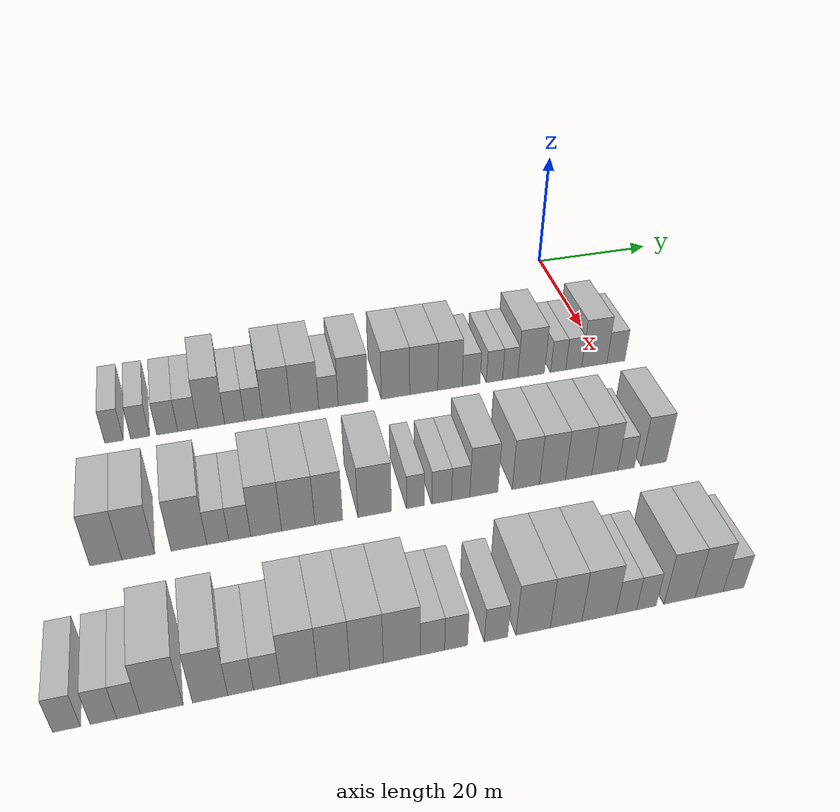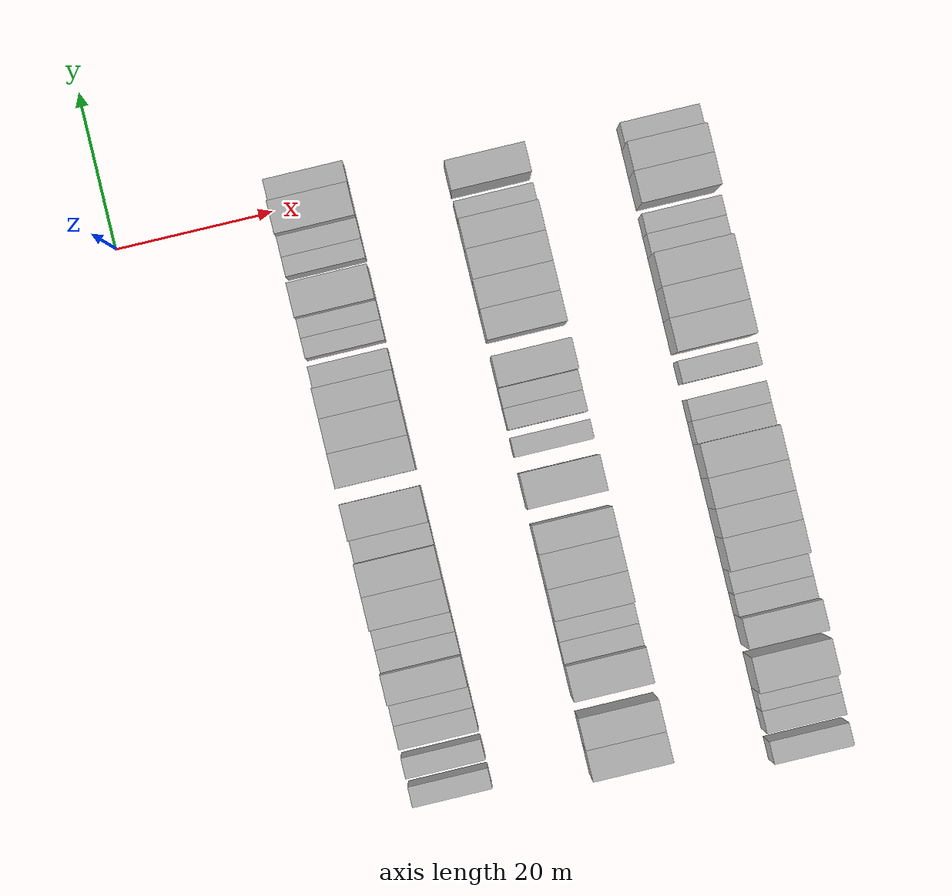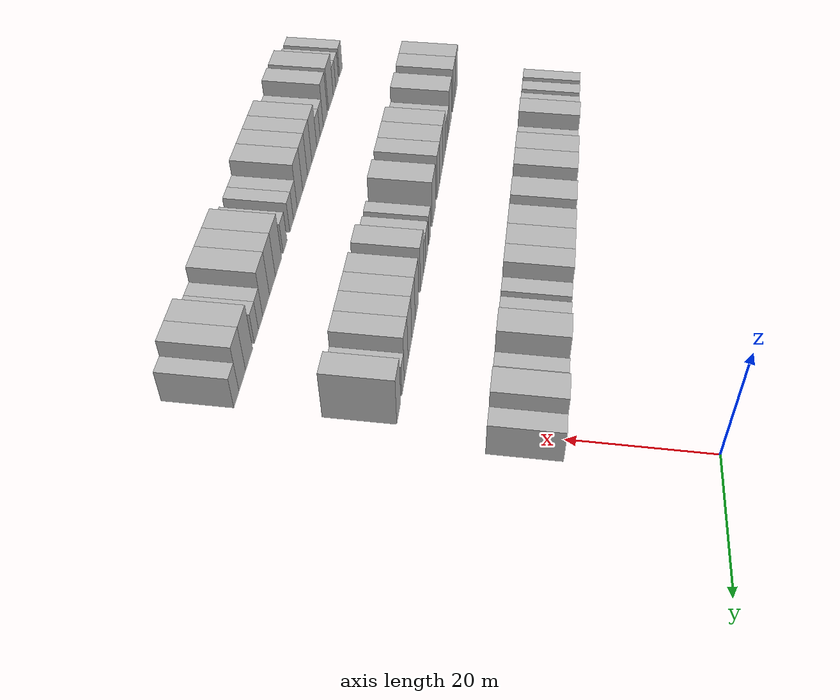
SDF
<sdf version="1.6">
 <world name="default">
  <model name="building_40">
   <static>1</static>
   <pose>25.0000 -73.9333 0 0.000000 0.000000 0.000000</pose>
   <link name="link">
    <pose>0 0 3.00 0 0 0</pose>
    <collision name="collision"><geometry><box><size>10.0000 2.5794 6.0000</size></box></geometry></collision>
    <visual name="visual">
     <cast_shadows>0</cast_shadows>
     <geometry><box><size>10.0000 2.5794 6.0000</size></box></geometry>
     <material>
      <script>
       <uri>model://HANNAS_wall/materials/scripts</uri>
       <uri>model://HANNAS_wall/materials/textures</uri>
       <name>vrc/HANNAS_wall</name>
      </script>
     </material>
    </visual>
   </link>
  </model>
  <model name="building_41">
   <static>1</static>
   <pose>25.0000 -70.3385 0 0.000000 0.000000 0.000000</pose>
   <link name="link">
    <pose>0 0 3.00 0 0 0</pose>
    <collision name="collision"><geometry><box><size>10.0000 2.6103 6.0000</size></box></geometry></collision>
    <visual name="visual">
     <cast_shadows>0</cast_shadows>
     <geometry><box><size>10.0000 2.6103 6.0000</size></box></geometry>
     <material>
      <script>
       <uri>model://HANNAS_wall/materials/scripts</uri>
       <uri>model://HANNAS_wall/materials/textures</uri>
       <name>vrc/HANNAS_wall</name>
      </script>
     </material>
    </visual>
   </link>
  </model>
  <model name="building_42">
   <static>1</static>
   <pose>25.0000 -66.5599 0 0.000000 0.000000 0.000000</pose>
   <link name="link">
    <pose>0 0 3.00 0 0 0</pose>
    <collision name="collision"><geometry><box><size>10.0000 2.9468 6.0000</size></box></geometry></collision>
    <visual name="visual">
     <cast_shadows>0</cast_shadows>
     <geometry><box><size>10.0000 2.9468 6.0000</size></box></geometry>
     <material>
      <script>
       <uri>model://HANNAS_wall/materials/scripts</uri>
       <uri>model://HANNAS_wall/materials/textures</uri>
       <name>vrc/HANNAS_wall</name>
      </script>
     </material>
    </visual>
   </link>
  </model>
  <model name="building_43">
   <static>1</static>
   <pose>25.0000 -63.6594 0 0.000000 0.000000 0.000000</pose>
   <link name="link">
    <pose>0 0 3.00 0 0 0</pose>
    <collision name="collision"><geometry><box><size>10.0000 2.8542 6.0000</size></box></geometry></collision>
    <visual name="visual">
     <cast_shadows>0</cast_shadows>
     <geometry><box><size>10.0000 2.8542 6.0000</size></box></geometry>
     <material>
      <script>
       <uri>model://HANNAS_wall/materials/scripts</uri>
       <uri>model://HANNAS_wall/materials/textures</uri>
       <name>vrc/HANNAS_wall</name>
      </script>
     </material>
    </visual>
   </link>
  </model>
  <model name="building_44">
   <static>1</static>
   <pose>25.0000 -60.3296 0 0.000000 0.000000 0.000000</pose>
   <link name="link">
    <pose>0 0 4.50 0 0 0</pose>
    <collision name="collision"><geometry><box><size>10.0000 3.8053 9.0000</size></box></geometry></collision>
    <visual name="visual">
     <cast_shadows>0</cast_shadows>
     <geometry><box><size>10.0000 3.8053 9.0000</size></box></geometry>
     <material>
      <script>
       <uri>model://HANNAS_wall/materials/scripts</uri>
       <uri>model://HANNAS_wall/materials/textures</uri>
       <name>vrc/HANNAS_wall</name>
      </script>
     </material>
    </visual>
   </link>
  </model>
  <model name="building_45">
   <static>1</static>
   <pose>25.0000 -57.0089 0 0.000000 0.000000 0.000000</pose>
   <link name="link">
    <pose>0 0 3.00 0 0 0</pose>
    <collision name="collision"><geometry><box><size>10.0000 2.8361 6.0000</size></box></geometry></collision>
    <visual name="visual">
     <cast_shadows>0</cast_shadows>
     <geometry><box><size>10.0000 2.8361 6.0000</size></box></geometry>
     <material>
      <script>
       <uri>model://HANNAS_wall/materials/scripts</uri>
       <uri>model://HANNAS_wall/materials/textures</uri>
       <name>vrc/HANNAS_wall</name>
      </script>
     </material>
    </visual>
   </link>
  </model>
  <model name="building_46">
   <static>1</static>
   <pose>25.0000 -54.2836 0 0.000000 0.000000 0.000000</pose>
   <link name="link">
    <pose>0 0 3.00 0 0 0</pose>
    <collision name="collision"><geometry><box><size>10.0000 2.6145 6.0000</size></box></geometry></collision>
    <visual name="visual">
     <cast_shadows>0</cast_shadows>
     <geometry><box><size>10.0000 2.6145 6.0000</size></box></geometry>
     <material>
      <script>
       <uri>model://HANNAS_wall/materials/scripts</uri>
       <uri>model://HANNAS_wall/materials/textures</uri>
       <name>vrc/HANNAS_wall</name>
      </script>
     </material>
    </visual>
   </link>
  </model>
  <model name="building_47">
   <static>1</static>
   <pose>25.0000 -50.9097 0 0.000000 0.000000 0.000000</pose>
   <link name="link">
    <pose>0 0 4.50 0 0 0</pose>
    <collision name="collision"><geometry><box><size>10.0000 4.1334 9.0000</size></box></geometry></collision>
    <visual name="visual">
     <cast_shadows>0</cast_shadows>
     <geometry><box><size>10.0000 4.1334 9.0000</size></box></geometry>
     <material>
      <script>
       <uri>model://HANNAS_wall/materials/scripts</uri>
       <uri>model://HANNAS_wall/materials/textures</uri>
       <name>vrc/HANNAS_wall</name>
      </script>
     </material>
    </visual>
   </link>
  </model>
  <model name="building_48">
   <static>1</static>
   <pose>25.0000 -46.7905 0 0.000000 0.000000 0.000000</pose>
   <link name="link">
    <pose>0 0 4.50 0 0 0</pose>
    <collision name="collision"><geometry><box><size>10.0000 4.1050 9.0000</size></box></geometry></collision>
    <visual name="visual">
     <cast_shadows>0</cast_shadows>
     <geometry><box><size>10.0000 4.1050 9.0000</size></box></geometry>
     <material>
      <script>
       <uri>model://HANNAS_wall/materials/scripts</uri>
       <uri>model://HANNAS_wall/materials/textures</uri>
       <name>vrc/HANNAS_wall</name>
      </script>
     </material>
    </visual>
   </link>
  </model>
  <model name="building_49">
   <static>1</static>
   <pose>25.0000 -43.2898 0 0.000000 0.000000 0.000000</pose>
   <link name="link">
    <pose>0 0 3.00 0 0 0</pose>
    <collision name="collision"><geometry><box><size>10.0000 2.8965 6.0000</size></box></geometry></collision>
    <visual name="visual">
     <cast_shadows>0</cast_shadows>
     <geometry><box><size>10.0000 2.8965 6.0000</size></box></geometry>
     <material>
      <script>
       <uri>model://HANNAS_wall/materials/scripts</uri>
       <uri>model://HANNAS_wall/materials/textures</uri>
       <name>vrc/HANNAS_wall</name>
      </script>
     </material>
    </visual>
   </link>
  </model>
  <model name="building_50">
   <static>1</static>
   <pose>25.0000 -39.6009 0 0.000000 0.000000 0.000000</pose>
   <link name="link">
    <pose>0 0 4.50 0 0 0</pose>
    <collision name="collision"><geometry><box><size>10.0000 4.4813 9.0000</size></box></geometry></collision>
    <visual name="visual">
     <cast_shadows>0</cast_shadows>
     <geometry><box><size>10.0000 4.4813 9.0000</size></box></geometry>
     <material>
      <script>
       <uri>model://HANNAS_wall/materials/scripts</uri>
       <uri>model://HANNAS_wall/materials/textures</uri>
       <name>vrc/HANNAS_wall</name>
      </script>
     </material>
    </visual>
   </link>
  </model>
  <model name="building_51">
   <static>1</static>
   <pose>25.0000 -33.2024 0 0.000000 0.000000 0.000000</pose>
   <link name="link">
    <pose>0 0 4.50 0 0 0</pose>
    <collision name="collision"><geometry><box><size>10.0000 4.3157 9.0000</size></box></geometry></collision>
    <visual name="visual">
     <cast_shadows>0</cast_shadows>
     <geometry><box><size>10.0000 4.3157 9.0000</size></box></geometry>
     <material>
      <script>
       <uri>model://HANNAS_wall/materials/scripts</uri>
       <uri>model://HANNAS_wall/materials/textures</uri>
       <name>vrc/HANNAS_wall</name>
      </script>
     </material>
    </visual>
   </link>
  </model>
  <model name="building_52">
   <static>1</static>
   <pose>25.0000 -28.8825 0 0.000000 0.000000 0.000000</pose>
   <link name="link">
    <pose>0 0 4.50 0 0 0</pose>
    <collision name="collision"><geometry><box><size>10.0000 4.3240 9.0000</size></box></geometry></collision>
    <visual name="visual">
     <cast_shadows>0</cast_shadows>
     <geometry><box><size>10.0000 4.3240 9.0000</size></box></geometry>
     <material>
      <script>
       <uri>model://HANNAS_wall/materials/scripts</uri>
       <uri>model://HANNAS_wall/materials/textures</uri>
       <name>vrc/HANNAS_wall</name>
      </script>
     </material>
    </visual>
   </link>
  </model>
  <model name="building_53">
   <static>1</static>
   <pose>25.0000 -24.8247 0 0.000000 0.000000 0.000000</pose>
   <link name="link">
    <pose>0 0 4.50 0 0 0</pose>
    <collision name="collision"><geometry><box><size>10.0000 3.7916 9.0000</size></box></geometry></collision>
    <visual name="visual">
     <cast_shadows>0</cast_shadows>
     <geometry><box><size>10.0000 3.7916 9.0000</size></box></geometry>
     <material>
      <script>
       <uri>model://HANNAS_wall/materials/scripts</uri>
       <uri>model://HANNAS_wall/materials/textures</uri>
       <name>vrc/HANNAS_wall</name>
      </script>
     </material>
    </visual>
   </link>
  </model>
  <model name="building_54">
   <static>1</static>
   <pose>25.0000 -21.5169 0 0.000000 0.000000 0.000000</pose>
   <link name="link">
    <pose>0 0 3.00 0 0 0</pose>
    <collision name="collision"><geometry><box><size>10.0000 2.8240 6.0000</size></box></geometry></collision>
    <visual name="visual">
     <cast_shadows>0</cast_shadows>
     <geometry><box><size>10.0000 2.8240 6.0000</size></box></geometry>
     <material>
      <script>
       <uri>model://HANNAS_wall/materials/scripts</uri>
       <uri>model://HANNAS_wall/materials/textures</uri>
       <name>vrc/HANNAS_wall</name>
      </script>
     </material>
    </visual>
   </link>
  </model>
  <model name="building_55">
   <static>1</static>
   <pose>25.0000 -17.8213 0 0.000000 0.000000 0.000000</pose>
   <link name="link">
    <pose>0 0 3.00 0 0 0</pose>
    <collision name="collision"><geometry><box><size>10.0000 2.5672 6.0000</size></box></geometry></collision>
    <visual name="visual">
     <cast_shadows>0</cast_shadows>
     <geometry><box><size>10.0000 2.5672 6.0000</size></box></geometry>
     <material>
      <script>
       <uri>model://HANNAS_wall/materials/scripts</uri>
       <uri>model://HANNAS_wall/materials/textures</uri>
       <name>vrc/HANNAS_wall</name>
      </script>
     </material>
    </visual>
   </link>
  </model>
  <model name="building_56">
   <static>1</static>
   <pose>25.0000 -15.3279 0 0.000000 0.000000 0.000000</pose>
   <link name="link">
    <pose>0 0 3.00 0 0 0</pose>
    <collision name="collision"><geometry><box><size>10.0000 2.4195 6.0000</size></box></geometry></collision>
    <visual name="visual">
     <cast_shadows>0</cast_shadows>
     <geometry><box><size>10.0000 2.4195 6.0000</size></box></geometry>
     <material>
      <script>
       <uri>model://HANNAS_wall/materials/scripts</uri>
       <uri>model://HANNAS_wall/materials/textures</uri>
       <name>vrc/HANNAS_wall</name>
      </script>
     </material>
    </visual>
   </link>
  </model>
  <model name="building_57">
   <static>1</static>
   <pose>25.0000 -11.9691 0 0.000000 0.000000 0.000000</pose>
   <link name="link">
    <pose>0 0 4.50 0 0 0</pose>
    <collision name="collision"><geometry><box><size>10.0000 4.2981 9.0000</size></box></geometry></collision>
    <visual name="visual">
     <cast_shadows>0</cast_shadows>
     <geometry><box><size>10.0000 4.2981 9.0000</size></box></geometry>
     <material>
      <script>
       <uri>model://HANNAS_wall/materials/scripts</uri>
       <uri>model://HANNAS_wall/materials/textures</uri>
       <name>vrc/HANNAS_wall</name>
      </script>
     </material>
    </visual>
   </link>
  </model>
  <model name="building_58">
   <static>1</static>
   <pose>25.0000 -7.5901 0 0.000000 0.000000 0.000000</pose>
   <link name="link">
    <pose>0 0 3.00 0 0 0</pose>
    <collision name="collision"><geometry><box><size>10.0000 2.4600 6.0000</size></box></geometry></collision>
    <visual name="visual">
     <cast_shadows>0</cast_shadows>
     <geometry><box><size>10.0000 2.4600 6.0000</size></box></geometry>
     <material>
      <script>
       <uri>model://HANNAS_wall/materials/scripts</uri>
       <uri>model://HANNAS_wall/materials/textures</uri>
       <name>vrc/HANNAS_wall</name>
      </script>
     </material>
    </visual>
   </link>
  </model>
  <model name="building_59">
   <static>1</static>
   <pose>25.0000 -5.0521 0 0.000000 0.000000 0.000000</pose>
   <link name="link">
    <pose>0 0 3.00 0 0 0</pose>
    <collision name="collision"><geometry><box><size>10.0000 2.6160 6.0000</size></box></geometry></collision>
    <visual name="visual">
     <cast_shadows>0</cast_shadows>
     <geometry><box><size>10.0000 2.6160 6.0000</size></box></geometry>
     <material>
      <script>
       <uri>model://HANNAS_wall/materials/scripts</uri>
       <uri>model://HANNAS_wall/materials/textures</uri>
       <name>vrc/HANNAS_wall</name>
      </script>
     </material>
    </visual>
   </link>
  </model>
  <model name="building_60">
   <static>1</static>
   <pose>25.0000 -1.6668 0 0.000000 0.000000 0.000000</pose>
   <link name="link">
    <pose>0 0 4.50 0 0 0</pose>
    <collision name="collision"><geometry><box><size>10.0000 4.1545 9.0000</size></box></geometry></collision>
    <visual name="visual">
     <cast_shadows>0</cast_shadows>
     <geometry><box><size>10.0000 4.1545 9.0000</size></box></geometry>
     <material>
      <script>
       <uri>model://HANNAS_wall/materials/scripts</uri>
       <uri>model://HANNAS_wall/materials/textures</uri>
       <name>vrc/HANNAS_wall</name>
      </script>
     </material>
    </visual>
   </link>
  </model>
  <model name="building_61">
   <static>1</static>
   <pose>25.0000 1.9096 0 0.000000 0.000000 0.000000</pose>
   <link name="link">
    <pose>0 0 3.00 0 0 0</pose>
    <collision name="collision"><geometry><box><size>10.0000 2.9982 6.0000</size></box></geometry></collision>
    <visual name="visual">
     <cast_shadows>0</cast_shadows>
     <geometry><box><size>10.0000 2.9982 6.0000</size></box></geometry>
     <material>
      <script>
       <uri>model://HANNAS_wall/materials/scripts</uri>
       <uri>model://HANNAS_wall/materials/textures</uri>
       <name>vrc/HANNAS_wall</name>
      </script>
     </material>
    </visual>
   </link>
  </model>
  <model name="building_172">
   <static>1</static>
   <pose>47.0000 -74.9701 0 0.000000 0.000000 0.000000</pose>
   <link name="link">
    <pose>0 0 4.50 0 0 0</pose>
    <collision name="collision"><geometry><box><size>10.0000 3.8604 9.0000</size></box></geometry></collision>
    <visual name="visual">
     <cast_shadows>0</cast_shadows>
     <geometry><box><size>10.0000 3.8604 9.0000</size></box></geometry>
     <material>
      <script>
       <uri>model://HANNAS_wall/materials/scripts</uri>
       <uri>model://HANNAS_wall/materials/textures</uri>
       <name>vrc/HANNAS_wall</name>
      </script>
     </material>
    </visual>
   </link>
  </model>
  <model name="building_173">
   <static>1</static>
   <pose>47.0000 -71.0422 0 0.000000 0.000000 0.000000</pose>
   <link name="link">
    <pose>0 0 4.50 0 0 0</pose>
    <collision name="collision"><geometry><box><size>10.0000 3.9955 9.0000</size></box></geometry></collision>
    <visual name="visual">
     <cast_shadows>0</cast_shadows>
     <geometry><box><size>10.0000 3.9955 9.0000</size></box></geometry>
     <material>
      <script>
       <uri>model://HANNAS_wall/materials/scripts</uri>
       <uri>model://HANNAS_wall/materials/textures</uri>
       <name>vrc/HANNAS_wall</name>
      </script>
     </material>
    </visual>
   </link>
  </model>
  <model name="building_174">
   <static>1</static>
   <pose>47.0000 -64.8276 0 0.000000 0.000000 0.000000</pose>
   <link name="link">
    <pose>0 0 4.50 0 0 0</pose>
    <collision name="collision"><geometry><box><size>10.0000 4.4336 9.0000</size></box></geometry></collision>
    <visual name="visual">
     <cast_shadows>0</cast_shadows>
     <geometry><box><size>10.0000 4.4336 9.0000</size></box></geometry>
     <material>
      <script>
       <uri>model://HANNAS_wall/materials/scripts</uri>
       <uri>model://HANNAS_wall/materials/textures</uri>
       <name>vrc/HANNAS_wall</name>
      </script>
     </material>
    </visual>
   </link>
  </model>
  <model name="building_175">
   <static>1</static>
   <pose>47.0000 -61.2288 0 0.000000 0.000000 0.000000</pose>
   <link name="link">
    <pose>0 0 3.00 0 0 0</pose>
    <collision name="collision"><geometry><box><size>10.0000 2.7641 6.0000</size></box></geometry></collision>
    <visual name="visual">
     <cast_shadows>0</cast_shadows>
     <geometry><box><size>10.0000 2.7641 6.0000</size></box></geometry>
     <material>
      <script>
       <uri>model://HANNAS_wall/materials/scripts</uri>
       <uri>model://HANNAS_wall/materials/textures</uri>
       <name>vrc/HANNAS_wall</name>
      </script>
     </material>
    </visual>
   </link>
  </model>
  <model name="building_176">
   <static>1</static>
   <pose>47.0000 -58.4644 0 0.000000 0.000000 0.000000</pose>
   <link name="link">
    <pose>0 0 3.00 0 0 0</pose>
    <collision name="collision"><geometry><box><size>10.0000 2.7646 6.0000</size></box></geometry></collision>
    <visual name="visual">
     <cast_shadows>0</cast_shadows>
     <geometry><box><size>10.0000 2.7646 6.0000</size></box></geometry>
     <material>
      <script>
       <uri>model://HANNAS_wall/materials/scripts</uri>
       <uri>model://HANNAS_wall/materials/textures</uri>
       <name>vrc/HANNAS_wall</name>
      </script>
     </material>
    </visual>
   </link>
  </model>
  <model name="building_177">
   <static>1</static>
   <pose>47.0000 -55.1084 0 0.000000 0.000000 0.000000</pose>
   <link name="link">
    <pose>0 0 4.50 0 0 0</pose>
    <collision name="collision"><geometry><box><size>10.0000 3.9475 9.0000</size></box></geometry></collision>
    <visual name="visual">
     <cast_shadows>0</cast_shadows>
     <geometry><box><size>10.0000 3.9475 9.0000</size></box></geometry>
     <material>
      <script>
       <uri>model://HANNAS_wall/materials/scripts</uri>
       <uri>model://HANNAS_wall/materials/textures</uri>
       <name>vrc/HANNAS_wall</name>
      </script>
     </material>
    </visual>
   </link>
  </model>
  <model name="building_178">
   <static>1</static>
   <pose>47.0000 -50.9858 0 0.000000 0.000000 0.000000</pose>
   <link name="link">
    <pose>0 0 4.50 0 0 0</pose>
    <collision name="collision"><geometry><box><size>10.0000 4.2977 9.0000</size></box></geometry></collision>
    <visual name="visual">
     <cast_shadows>0</cast_shadows>
     <geometry><box><size>10.0000 4.2977 9.0000</size></box></geometry>
     <material>
      <script>
       <uri>model://HANNAS_wall/materials/scripts</uri>
       <uri>model://HANNAS_wall/materials/textures</uri>
       <name>vrc/HANNAS_wall</name>
      </script>
     </material>
    </visual>
   </link>
  </model>
  <model name="building_179">
   <static>1</static>
   <pose>47.0000 -47.0132 0 0.000000 0.000000 0.000000</pose>
   <link name="link">
    <pose>0 0 4.50 0 0 0</pose>
    <collision name="collision"><geometry><box><size>10.0000 3.6473 9.0000</size></box></geometry></collision>
    <visual name="visual">
     <cast_shadows>0</cast_shadows>
     <geometry><box><size>10.0000 3.6473 9.0000</size></box></geometry>
     <material>
      <script>
       <uri>model://HANNAS_wall/materials/scripts</uri>
       <uri>model://HANNAS_wall/materials/textures</uri>
       <name>vrc/HANNAS_wall</name>
      </script>
     </material>
    </visual>
   </link>
  </model>
  <model name="building_180">
   <static>1</static>
   <pose>47.0000 -40.9636 0 0.000000 0.000000 0.000000</pose>
   <link name="link">
    <pose>0 0 4.50 0 0 0</pose>
    <collision name="collision"><geometry><box><size>10.0000 4.4519 9.0000</size></box></geometry></collision>
    <visual name="visual">
     <cast_shadows>0</cast_shadows>
     <geometry><box><size>10.0000 4.4519 9.0000</size></box></geometry>
     <material>
      <script>
       <uri>model://HANNAS_wall/materials/scripts</uri>
       <uri>model://HANNAS_wall/materials/textures</uri>
       <name>vrc/HANNAS_wall</name>
      </script>
     </material>
    </visual>
   </link>
  </model>
  <model name="building_181">
   <static>1</static>
   <pose>47.0000 -35.5233 0 0.000000 0.000000 0.000000</pose>
   <link name="link">
    <pose>0 0 3.00 0 0 0</pose>
    <collision name="collision"><geometry><box><size>10.0000 2.4288 6.0000</size></box></geometry></collision>
    <visual name="visual">
     <cast_shadows>0</cast_shadows>
     <geometry><box><size>10.0000 2.4288 6.0000</size></box></geometry>
     <material>
      <script>
       <uri>model://HANNAS_wall/materials/scripts</uri>
       <uri>model://HANNAS_wall/materials/textures</uri>
       <name>vrc/HANNAS_wall</name>
      </script>
     </material>
    </visual>
   </link>
  </model>
  <model name="building_182">
   <static>1</static>
   <pose>47.0000 -31.9586 0 0.000000 0.000000 0.000000</pose>
   <link name="link">
    <pose>0 0 3.00 0 0 0</pose>
    <collision name="collision"><geometry><box><size>10.0000 2.7006 6.0000</size></box></geometry></collision>
    <visual name="visual">
     <cast_shadows>0</cast_shadows>
     <geometry><box><size>10.0000 2.7006 6.0000</size></box></geometry>
     <material>
      <script>
       <uri>model://HANNAS_wall/materials/scripts</uri>
       <uri>model://HANNAS_wall/materials/textures</uri>
       <name>vrc/HANNAS_wall</name>
      </script>
     </material>
    </visual>
   </link>
  </model>
  <model name="building_183">
   <static>1</static>
   <pose>47.0000 -29.3502 0 0.000000 0.000000 0.000000</pose>
   <link name="link">
    <pose>0 0 3.00 0 0 0</pose>
    <collision name="collision"><geometry><box><size>10.0000 2.5163 6.0000</size></box></geometry></collision>
    <visual name="visual">
     <cast_shadows>0</cast_shadows>
     <geometry><box><size>10.0000 2.5163 6.0000</size></box></geometry>
     <material>
      <script>
       <uri>model://HANNAS_wall/materials/scripts</uri>
       <uri>model://HANNAS_wall/materials/textures</uri>
       <name>vrc/HANNAS_wall</name>
      </script>
     </material>
    </visual>
   </link>
  </model>
  <model name="building_184">
   <static>1</static>
   <pose>47.0000 -26.1444 0 0.000000 0.000000 0.000000</pose>
   <link name="link">
    <pose>0 0 4.50 0 0 0</pose>
    <collision name="collision"><geometry><box><size>10.0000 3.8954 9.0000</size></box></geometry></collision>
    <visual name="visual">
     <cast_shadows>0</cast_shadows>
     <geometry><box><size>10.0000 3.8954 9.0000</size></box></geometry>
     <material>
      <script>
       <uri>model://HANNAS_wall/materials/scripts</uri>
       <uri>model://HANNAS_wall/materials/textures</uri>
       <name>vrc/HANNAS_wall</name>
      </script>
     </material>
    </visual>
   </link>
  </model>
  <model name="building_185">
   <static>1</static>
   <pose>47.0000 -20.2733 0 0.000000 0.000000 0.000000</pose>
   <link name="link">
    <pose>0 0 4.50 0 0 0</pose>
    <collision name="collision"><geometry><box><size>10.0000 3.8469 9.0000</size></box></geometry></collision>
    <visual name="visual">
     <cast_shadows>0</cast_shadows>
     <geometry><box><size>10.0000 3.8469 9.0000</size></box></geometry>
     <material>
      <script>
       <uri>model://HANNAS_wall/materials/scripts</uri>
       <uri>model://HANNAS_wall/materials/textures</uri>
       <name>vrc/HANNAS_wall</name>
      </script>
     </material>
    </visual>
   </link>
  </model>
  <model name="building_186">
   <static>1</static>
   <pose>47.0000 -16.5041 0 0.000000 0.000000 0.000000</pose>
   <link name="link">
    <pose>0 0 4.50 0 0 0</pose>
    <collision name="collision"><geometry><box><size>10.0000 3.6915 9.0000</size></box></geometry></collision>
    <visual name="visual">
     <cast_shadows>0</cast_shadows>
     <geometry><box><size>10.0000 3.6915 9.0000</size></box></geometry>
     <material>
      <script>
       <uri>model://HANNAS_wall/materials/scripts</uri>
       <uri>model://HANNAS_wall/materials/textures</uri>
       <name>vrc/HANNAS_wall</name>
      </script>
     </material>
    </visual>
   </link>
  </model>
  <model name="building_187">
   <static>1</static>
   <pose>47.0000 -12.7678 0 0.000000 0.000000 0.000000</pose>
   <link name="link">
    <pose>0 0 4.50 0 0 0</pose>
    <collision name="collision"><geometry><box><size>10.0000 3.7811 9.0000</size></box></geometry></collision>
    <visual name="visual">
     <cast_shadows>0</cast_shadows>
     <geometry><box><size>10.0000 3.7811 9.0000</size></box></geometry>
     <material>
      <script>
       <uri>model://HANNAS_wall/materials/scripts</uri>
       <uri>model://HANNAS_wall/materials/textures</uri>
       <name>vrc/HANNAS_wall</name>
      </script>
     </material>
    </visual>
   </link>
  </model>
  <model name="building_188">
   <static>1</static>
   <pose>47.0000 -8.9847 0 0.000000 0.000000 0.000000</pose>
   <link name="link">
    <pose>0 0 4.50 0 0 0</pose>
    <collision name="collision"><geometry><box><size>10.0000 3.7852 9.0000</size></box></geometry></collision>
    <visual name="visual">
     <cast_shadows>0</cast_shadows>
     <geometry><box><size>10.0000 3.7852 9.0000</size></box></geometry>
     <material>
      <script>
       <uri>model://HANNAS_wall/materials/scripts</uri>
       <uri>model://HANNAS_wall/materials/textures</uri>
       <name>vrc/HANNAS_wall</name>
      </script>
     </material>
    </visual>
   </link>
  </model>
  <model name="building_189">
   <static>1</static>
   <pose>47.0000 -5.8587 0 0.000000 0.000000 0.000000</pose>
   <link name="link">
    <pose>0 0 3.00 0 0 0</pose>
    <collision name="collision"><geometry><box><size>10.0000 2.4667 6.0000</size></box></geometry></collision>
    <visual name="visual">
     <cast_shadows>0</cast_shadows>
     <geometry><box><size>10.0000 2.4667 6.0000</size></box></geometry>
     <material>
      <script>
       <uri>model://HANNAS_wall/materials/scripts</uri>
       <uri>model://HANNAS_wall/materials/textures</uri>
       <name>vrc/HANNAS_wall</name>
      </script>
     </material>
    </visual>
   </link>
  </model>
  <model name="building_190">
   <static>1</static>
   <pose>47.0000 -1.7568 0 0.000000 0.000000 0.000000</pose>
   <link name="link">
    <pose>0 0 4.50 0 0 0</pose>
    <collision name="collision"><geometry><box><size>10.0000 3.7372 9.0000</size></box></geometry></collision>
    <visual name="visual">
     <cast_shadows>0</cast_shadows>
     <geometry><box><size>10.0000 3.7372 9.0000</size></box></geometry>
     <material>
      <script>
       <uri>model://HANNAS_wall/materials/scripts</uri>
       <uri>model://HANNAS_wall/materials/textures</uri>
       <name>vrc/HANNAS_wall</name>
      </script>
     </material>
    </visual>
   </link>
  </model>
  <model name="building_298">
   <static>1</static>
   <pose>69.0000 -78.9487 0 0.000000 0.000000 0.000000</pose>
   <link name="link">
    <pose>0 0 3.00 0 0 0</pose>
    <collision name="collision"><geometry><box><size>10.0000 2.8606 6.0000</size></box></geometry></collision>
    <visual name="visual">
     <cast_shadows>0</cast_shadows>
     <geometry><box><size>10.0000 2.8606 6.0000</size></box></geometry>
     <material>
      <script>
       <uri>model://HANNAS_wall/materials/scripts</uri>
       <uri>model://HANNAS_wall/materials/textures</uri>
       <name>vrc/HANNAS_wall</name>
      </script>
     </material>
    </visual>
   </link>
  </model>
  <model name="building_299">
   <static>1</static>
   <pose>69.0000 -75.1335 0 0.000000 0.000000 0.000000</pose>
   <link name="link">
    <pose>0 0 3.00 0 0 0</pose>
    <collision name="collision"><geometry><box><size>10.0000 2.7697 6.0000</size></box></geometry></collision>
    <visual name="visual">
     <cast_shadows>0</cast_shadows>
     <geometry><box><size>10.0000 2.7697 6.0000</size></box></geometry>
     <material>
      <script>
       <uri>model://HANNAS_wall/materials/scripts</uri>
       <uri>model://HANNAS_wall/materials/textures</uri>
       <name>vrc/HANNAS_wall</name>
      </script>
     </material>
    </visual>
   </link>
  </model>
  <model name="building_300">
   <static>1</static>
   <pose>69.0000 -72.5091 0 0.000000 0.000000 0.000000</pose>
   <link name="link">
    <pose>0 0 3.00 0 0 0</pose>
    <collision name="collision"><geometry><box><size>10.0000 2.4791 6.0000</size></box></geometry></collision>
    <visual name="visual">
     <cast_shadows>0</cast_shadows>
     <geometry><box><size>10.0000 2.4791 6.0000</size></box></geometry>
     <material>
      <script>
       <uri>model://HANNAS_wall/materials/scripts</uri>
       <uri>model://HANNAS_wall/materials/textures</uri>
       <name>vrc/HANNAS_wall</name>
      </script>
     </material>
    </visual>
   </link>
  </model>
  <model name="building_301">
   <static>1</static>
   <pose>69.0000 -69.0221 0 0.000000 0.000000 0.000000</pose>
   <link name="link">
    <pose>0 0 4.50 0 0 0</pose>
    <collision name="collision"><geometry><box><size>10.0000 4.4949 9.0000</size></box></geometry></collision>
    <visual name="visual">
     <cast_shadows>0</cast_shadows>
     <geometry><box><size>10.0000 4.4949 9.0000</size></box></geometry>
     <material>
      <script>
       <uri>model://HANNAS_wall/materials/scripts</uri>
       <uri>model://HANNAS_wall/materials/textures</uri>
       <name>vrc/HANNAS_wall</name>
      </script>
     </material>
    </visual>
   </link>
  </model>
  <model name="building_302">
   <static>1</static>
   <pose>69.0000 -63.8690 0 0.000000 0.000000 0.000000</pose>
   <link name="link">
    <pose>0 0 4.50 0 0 0</pose>
    <collision name="collision"><geometry><box><size>10.0000 3.8113 9.0000</size></box></geometry></collision>
    <visual name="visual">
     <cast_shadows>0</cast_shadows>
     <geometry><box><size>10.0000 3.8113 9.0000</size></box></geometry>
     <material>
      <script>
       <uri>model://HANNAS_wall/materials/scripts</uri>
       <uri>model://HANNAS_wall/materials/textures</uri>
       <name>vrc/HANNAS_wall</name>
      </script>
     </material>
    </visual>
   </link>
  </model>
  <model name="building_303">
   <static>1</static>
   <pose>69.0000 -60.5554 0 0.000000 0.000000 0.000000</pose>
   <link name="link">
    <pose>0 0 3.00 0 0 0</pose>
    <collision name="collision"><geometry><box><size>10.0000 2.8158 6.0000</size></box></geometry></collision>
    <visual name="visual">
     <cast_shadows>0</cast_shadows>
     <geometry><box><size>10.0000 2.8158 6.0000</size></box></geometry>
     <material>
      <script>
       <uri>model://HANNAS_wall/materials/scripts</uri>
       <uri>model://HANNAS_wall/materials/textures</uri>
       <name>vrc/HANNAS_wall</name>
      </script>
     </material>
    </visual>
   </link>
  </model>
  <model name="building_304">
   <static>1</static>
   <pose>69.0000 -57.6653 0 0.000000 0.000000 0.000000</pose>
   <link name="link">
    <pose>0 0 3.00 0 0 0</pose>
    <collision name="collision"><geometry><box><size>10.0000 2.9644 6.0000</size></box></geometry></collision>
    <visual name="visual">
     <cast_shadows>0</cast_shadows>
     <geometry><box><size>10.0000 2.9644 6.0000</size></box></geometry>
     <material>
      <script>
       <uri>model://HANNAS_wall/materials/scripts</uri>
       <uri>model://HANNAS_wall/materials/textures</uri>
       <name>vrc/HANNAS_wall</name>
      </script>
     </material>
    </visual>
   </link>
  </model>
  <model name="building_305">
   <static>1</static>
   <pose>69.0000 -54.1150 0 0.000000 0.000000 0.000000</pose>
   <link name="link">
    <pose>0 0 4.50 0 0 0</pose>
    <collision name="collision"><geometry><box><size>10.0000 4.1362 9.0000</size></box></geometry></collision>
    <visual name="visual">
     <cast_shadows>0</cast_shadows>
     <geometry><box><size>10.0000 4.1362 9.0000</size></box></geometry>
     <material>
      <script>
       <uri>model://HANNAS_wall/materials/scripts</uri>
       <uri>model://HANNAS_wall/materials/textures</uri>
       <name>vrc/HANNAS_wall</name>
      </script>
     </material>
    </visual>
   </link>
  </model>
  <model name="building_306">
   <static>1</static>
   <pose>69.0000 -50.2383 0 0.000000 0.000000 0.000000</pose>
   <link name="link">
    <pose>0 0 4.50 0 0 0</pose>
    <collision name="collision"><geometry><box><size>10.0000 3.6171 9.0000</size></box></geometry></collision>
    <visual name="visual">
     <cast_shadows>0</cast_shadows>
     <geometry><box><size>10.0000 3.6171 9.0000</size></box></geometry>
     <material>
      <script>
       <uri>model://HANNAS_wall/materials/scripts</uri>
       <uri>model://HANNAS_wall/materials/textures</uri>
       <name>vrc/HANNAS_wall</name>
      </script>
     </material>
    </visual>
   </link>
  </model>
  <model name="building_307">
   <static>1</static>
   <pose>69.0000 -46.5110 0 0.000000 0.000000 0.000000</pose>
   <link name="link">
    <pose>0 0 4.50 0 0 0</pose>
    <collision name="collision"><geometry><box><size>10.0000 3.8374 9.0000</size></box></geometry></collision>
    <visual name="visual">
     <cast_shadows>0</cast_shadows>
     <geometry><box><size>10.0000 3.8374 9.0000</size></box></geometry>
     <material>
      <script>
       <uri>model://HANNAS_wall/materials/scripts</uri>
       <uri>model://HANNAS_wall/materials/textures</uri>
       <name>vrc/HANNAS_wall</name>
      </script>
     </material>
    </visual>
   </link>
  </model>
  <model name="building_308">
   <static>1</static>
   <pose>69.0000 -42.4566 0 0.000000 0.000000 0.000000</pose>
   <link name="link">
    <pose>0 0 4.50 0 0 0</pose>
    <collision name="collision"><geometry><box><size>10.0000 4.2714 9.0000</size></box></geometry></collision>
    <visual name="visual">
     <cast_shadows>0</cast_shadows>
     <geometry><box><size>10.0000 4.2714 9.0000</size></box></geometry>
     <material>
      <script>
       <uri>model://HANNAS_wall/materials/scripts</uri>
       <uri>model://HANNAS_wall/materials/textures</uri>
       <name>vrc/HANNAS_wall</name>
      </script>
     </material>
    </visual>
   </link>
  </model>
  <model name="building_309">
   <static>1</static>
   <pose>69.0000 -38.8986 0 0.000000 0.000000 0.000000</pose>
   <link name="link">
    <pose>0 0 3.00 0 0 0</pose>
    <collision name="collision"><geometry><box><size>10.0000 2.8446 6.0000</size></box></geometry></collision>
    <visual name="visual">
     <cast_shadows>0</cast_shadows>
     <geometry><box><size>10.0000 2.8446 6.0000</size></box></geometry>
     <material>
      <script>
       <uri>model://HANNAS_wall/materials/scripts</uri>
       <uri>model://HANNAS_wall/materials/textures</uri>
       <name>vrc/HANNAS_wall</name>
      </script>
     </material>
    </visual>
   </link>
  </model>
  <model name="building_310">
   <static>1</static>
   <pose>69.0000 -36.1164 0 0.000000 0.000000 0.000000</pose>
   <link name="link">
    <pose>0 0 3.00 0 0 0</pose>
    <collision name="collision"><geometry><box><size>10.0000 2.7198 6.0000</size></box></geometry></collision>
    <visual name="visual">
     <cast_shadows>0</cast_shadows>
     <geometry><box><size>10.0000 2.7198 6.0000</size></box></geometry>
     <material>
      <script>
       <uri>model://HANNAS_wall/materials/scripts</uri>
       <uri>model://HANNAS_wall/materials/textures</uri>
       <name>vrc/HANNAS_wall</name>
      </script>
     </material>
    </visual>
   </link>
  </model>
  <model name="building_311">
   <static>1</static>
   <pose>69.0000 -31.3491 0 0.000000 0.000000 0.000000</pose>
   <link name="link">
    <pose>0 0 3.00 0 0 0</pose>
    <collision name="collision"><geometry><box><size>10.0000 2.8149 6.0000</size></box></geometry></collision>
    <visual name="visual">
     <cast_shadows>0</cast_shadows>
     <geometry><box><size>10.0000 2.8149 6.0000</size></box></geometry>
     <material>
      <script>
       <uri>model://HANNAS_wall/materials/scripts</uri>
       <uri>model://HANNAS_wall/materials/textures</uri>
       <name>vrc/HANNAS_wall</name>
      </script>
     </material>
    </visual>
   </link>
  </model>
  <model name="building_312">
   <static>1</static>
   <pose>69.0000 -26.8433 0 0.000000 0.000000 0.000000</pose>
   <link name="link">
    <pose>0 0 4.50 0 0 0</pose>
    <collision name="collision"><geometry><box><size>10.0000 4.1967 9.0000</size></box></geometry></collision>
    <visual name="visual">
     <cast_shadows>0</cast_shadows>
     <geometry><box><size>10.0000 4.1967 9.0000</size></box></geometry>
     <material>
      <script>
       <uri>model://HANNAS_wall/materials/scripts</uri>
       <uri>model://HANNAS_wall/materials/textures</uri>
       <name>vrc/HANNAS_wall</name>
      </script>
     </material>
    </visual>
   </link>
  </model>
  <model name="building_313">
   <static>1</static>
   <pose>69.0000 -22.7971 0 0.000000 0.000000 0.000000</pose>
   <link name="link">
    <pose>0 0 4.50 0 0 0</pose>
    <collision name="collision"><geometry><box><size>10.0000 3.8956 9.0000</size></box></geometry></collision>
    <visual name="visual">
     <cast_shadows>0</cast_shadows>
     <geometry><box><size>10.0000 3.8956 9.0000</size></box></geometry>
     <material>
      <script>
       <uri>model://HANNAS_wall/materials/scripts</uri>
       <uri>model://HANNAS_wall/materials/textures</uri>
       <name>vrc/HANNAS_wall</name>
      </script>
     </material>
    </visual>
   </link>
  </model>
  <model name="building_314">
   <static>1</static>
   <pose>69.0000 -18.7157 0 0.000000 0.000000 0.000000</pose>
   <link name="link">
    <pose>0 0 4.50 0 0 0</pose>
    <collision name="collision"><geometry><box><size>10.0000 4.2672 9.0000</size></box></geometry></collision>
    <visual name="visual">
     <cast_shadows>0</cast_shadows>
     <geometry><box><size>10.0000 4.2672 9.0000</size></box></geometry>
     <material>
      <script>
       <uri>model://HANNAS_wall/materials/scripts</uri>
       <uri>model://HANNAS_wall/materials/textures</uri>
       <name>vrc/HANNAS_wall</name>
      </script>
     </material>
    </visual>
   </link>
  </model>
  <model name="building_315">
   <static>1</static>
   <pose>69.0000 -15.2753 0 0.000000 0.000000 0.000000</pose>
   <link name="link">
    <pose>0 0 3.00 0 0 0</pose>
    <collision name="collision"><geometry><box><size>10.0000 2.6137 6.0000</size></box></geometry></collision>
    <visual name="visual">
     <cast_shadows>0</cast_shadows>
     <geometry><box><size>10.0000 2.6137 6.0000</size></box></geometry>
     <material>
      <script>
       <uri>model://HANNAS_wall/materials/scripts</uri>
       <uri>model://HANNAS_wall/materials/textures</uri>
       <name>vrc/HANNAS_wall</name>
      </script>
     </material>
    </visual>
   </link>
  </model>
  <model name="building_316">
   <static>1</static>
   <pose>69.0000 -12.7161 0 0.000000 0.000000 0.000000</pose>
   <link name="link">
    <pose>0 0 3.00 0 0 0</pose>
    <collision name="collision"><geometry><box><size>10.0000 2.5047 6.0000</size></box></geometry></collision>
    <visual name="visual">
     <cast_shadows>0</cast_shadows>
     <geometry><box><size>10.0000 2.5047 6.0000</size></box></geometry>
     <material>
      <script>
       <uri>model://HANNAS_wall/materials/scripts</uri>
       <uri>model://HANNAS_wall/materials/textures</uri>
       <name>vrc/HANNAS_wall</name>
      </script>
     </material>
    </visual>
   </link>
  </model>
  <model name="building_317">
   <static>1</static>
   <pose>69.0000 -8.4502 0 0.000000 0.000000 0.000000</pose>
   <link name="link">
    <pose>0 0 4.50 0 0 0</pose>
    <collision name="collision"><geometry><box><size>10.0000 4.0271 9.0000</size></box></geometry></collision>
    <visual name="visual">
     <cast_shadows>0</cast_shadows>
     <geometry><box><size>10.0000 4.0271 9.0000</size></box></geometry>
     <material>
      <script>
       <uri>model://HANNAS_wall/materials/scripts</uri>
       <uri>model://HANNAS_wall/materials/textures</uri>
       <name>vrc/HANNAS_wall</name>
      </script>
     </material>
    </visual>
   </link>
  </model>
  <model name="building_318">
   <static>1</static>
   <pose>69.0000 -4.6134 0 0.000000 0.000000 0.000000</pose>
   <link name="link">
    <pose>0 0 4.50 0 0 0</pose>
    <collision name="collision"><geometry><box><size>10.0000 3.6466 9.0000</size></box></geometry></collision>
    <visual name="visual">
     <cast_shadows>0</cast_shadows>
     <geometry><box><size>10.0000 3.6466 9.0000</size></box></geometry>
     <material>
      <script>
       <uri>model://HANNAS_wall/materials/scripts</uri>
       <uri>model://HANNAS_wall/materials/textures</uri>
       <name>vrc/HANNAS_wall</name>
      </script>
     </material>
    </visual>
   </link>
  </model>
  <model name="building_319">
   <static>1</static>
   <pose>69.0000 -1.3949 0 0.000000 0.000000 0.000000</pose>
   <link name="link">
    <pose>0 0 3.00 0 0 0</pose>
    <collision name="collision"><geometry><box><size>10.0000 2.7904 6.0000</size></box></geometry></collision>
    <visual name="visual">
     <cast_shadows>0</cast_shadows>
     <geometry><box><size>10.0000 2.7904 6.0000</size></box></geometry>
     <material>
      <script>
       <uri>model://HANNAS_wall/materials/scripts</uri>
       <uri>model://HANNAS_wall/materials/textures</uri>
       <name>vrc/HANNAS_wall</name>
      </script>
     </material>
    </visual>
   </link>
  </model>
 </world>
</sdf>
